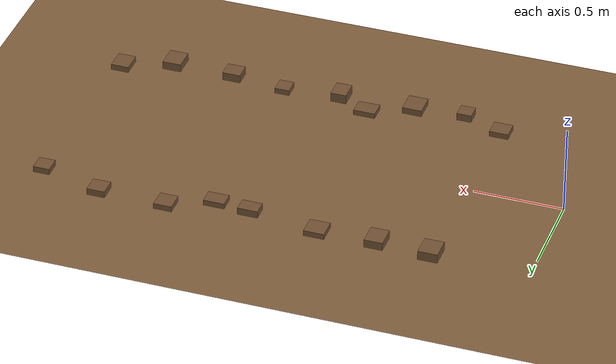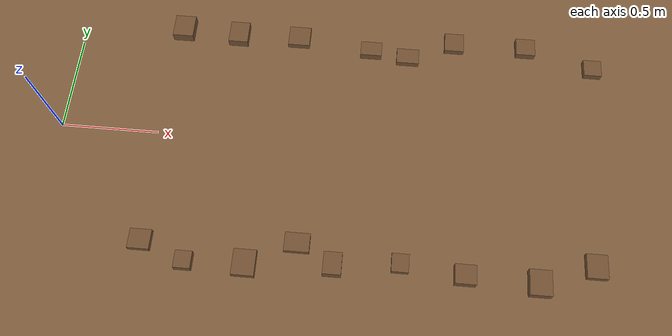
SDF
<sdf version="1.9">
 <world name="robot_shake">
  <physics name="1ms" type="ignored">
   <max_step_size>0.001</max_step_size>
   <real_time_factor>1.0</real_time_factor>
  </physics>
  <plugin filename="ignition-gazebo-physics-system" name="ignition::gazebo::systems::Physics"/>
  <plugin filename="ignition-gazebo-imu-system" name="ignition::gazebo::systems::Imu"/>
  <plugin filename="ignition-gazebo-scene-broadcaster-system" name="ignition::gazebo::systems::SceneBroadcaster"/>
  <plugin filename="ignition-gazebo-user-commands-system" name="ignition::gazebo::systems::UserCommands"/>
  <light type="directional" name="sun">
   <cast_shadows>false</cast_shadows>
   <pose>0 0 10 0 0 0</pose>
   <diffuse>1 1 1 1</diffuse>
   <specular>0.3 0.3 0.3 1</specular>
   <direction>-0.4 0.4 -0.85</direction>
  </light>
  <model name="ground">
   <static>true</static>
   <link name="link">
    <collision name="c">
     <geometry><plane><normal>0 0 1</normal><size>100 100</size></plane></geometry>
     <surface><friction><ode><mu>1.0</mu><mu2>1.0</mu2></ode></friction></surface>
    </collision>
    <visual name="v">
     <geometry><plane><normal>0 0 1</normal><size>100 100</size></plane></geometry>
     <material><ambient>0.3 0.22 0.14 1</ambient><diffuse>0.5 0.37 0.24 1</diffuse></material>
    </visual>
   </link>
  </model>
  <model name="clod_0">
   <static>true</static>
   <pose>0.523 -0.579 0.016 0 0 0</pose>
   <link name="l">
    <collision name="c">
     <geometry><box><size>0.107 0.098 0.032</size></box></geometry>
     <surface><friction><ode><mu>1.0</mu><mu2>1.0</mu2></ode></friction></surface>
    </collision>
    <visual name="v">
     <geometry><box><size>0.107 0.098 0.032</size></box></geometry>
     <material><ambient>0.28 0.2 0.12 1</ambient><diffuse>0.45 0.32 0.2 1</diffuse></material>
    </visual>
   </link>
  </model>
  <model name="clod_1">
   <static>true</static>
   <pose>0.749 -0.665 0.022 0 0 0</pose>
   <link name="l">
    <collision name="c">
     <geometry><box><size>0.083 0.085 0.043</size></box></geometry>
     <surface><friction><ode><mu>1.0</mu><mu2>1.0</mu2></ode></friction></surface>
    </collision>
    <visual name="v">
     <geometry><box><size>0.083 0.085 0.043</size></box></geometry>
     <material><ambient>0.28 0.2 0.12 1</ambient><diffuse>0.45 0.32 0.2 1</diffuse></material>
    </visual>
   </link>
  </model>
  <model name="clod_2">
   <static>true</static>
   <pose>1.038 -0.653 0.018 0 0 0</pose>
   <link name="l">
    <collision name="c">
     <geometry><box><size>0.111 0.127 0.037</size></box></geometry>
     <surface><friction><ode><mu>1.0</mu><mu2>1.0</mu2></ode></friction></surface>
    </collision>
    <visual name="v">
     <geometry><box><size>0.111 0.127 0.037</size></box></geometry>
     <material><ambient>0.28 0.2 0.12 1</ambient><diffuse>0.45 0.32 0.2 1</diffuse></material>
    </visual>
   </link>
  </model>
  <model name="clod_3">
   <static>true</static>
   <pose>1.279 -0.533 0.016 0 0 0</pose>
   <link name="l">
    <collision name="c">
     <geometry><box><size>0.123 0.094 0.031</size></box></geometry>
     <surface><friction><ode><mu>1.0</mu><mu2>1.0</mu2></ode></friction></surface>
    </collision>
    <visual name="v">
     <geometry><box><size>0.123 0.094 0.031</size></box></geometry>
     <material><ambient>0.28 0.2 0.12 1</ambient><diffuse>0.45 0.32 0.2 1</diffuse></material>
    </visual>
   </link>
  </model>
  <model name="clod_4">
   <static>true</static>
   <pose>1.457 -0.627 0.027 0 0 0</pose>
   <link name="l">
    <collision name="c">
     <geometry><box><size>0.089 0.109 0.054</size></box></geometry>
     <surface><friction><ode><mu>1.0</mu><mu2>1.0</mu2></ode></friction></surface>
    </collision>
    <visual name="v">
     <geometry><box><size>0.089 0.109 0.054</size></box></geometry>
     <material><ambient>0.28 0.2 0.12 1</ambient><diffuse>0.45 0.32 0.2 1</diffuse></material>
    </visual>
   </link>
  </model>
  <model name="clod_5">
   <static>true</static>
   <pose>1.777 -0.593 0.016 0 0 0</pose>
   <link name="l">
    <collision name="c">
     <geometry><box><size>0.083 0.090 0.032</size></box></geometry>
     <surface><friction><ode><mu>1.0</mu><mu2>1.0</mu2></ode></friction></surface>
    </collision>
    <visual name="v">
     <geometry><box><size>0.083 0.090 0.032</size></box></geometry>
     <material><ambient>0.28 0.2 0.12 1</ambient><diffuse>0.45 0.32 0.2 1</diffuse></material>
    </visual>
   </link>
  </model>
  <model name="clod_6">
   <static>true</static>
   <pose>2.085 -0.626 0.024 0 0 0</pose>
   <link name="l">
    <collision name="c">
     <geometry><box><size>0.103 0.095 0.048</size></box></geometry>
     <surface><friction><ode><mu>1.0</mu><mu2>1.0</mu2></ode></friction></surface>
    </collision>
    <visual name="v">
     <geometry><box><size>0.103 0.095 0.048</size></box></geometry>
     <material><ambient>0.28 0.2 0.12 1</ambient><diffuse>0.45 0.32 0.2 1</diffuse></material>
    </visual>
   </link>
  </model>
  <model name="clod_7">
   <static>true</static>
   <pose>2.435 -0.636 0.024 0 0 0</pose>
   <link name="l">
    <collision name="c">
     <geometry><box><size>0.106 0.124 0.047</size></box></geometry>
     <surface><friction><ode><mu>1.0</mu><mu2>1.0</mu2></ode></friction></surface>
    </collision>
    <visual name="v">
     <geometry><box><size>0.106 0.124 0.047</size></box></geometry>
     <material><ambient>0.28 0.2 0.12 1</ambient><diffuse>0.45 0.32 0.2 1</diffuse></material>
    </visual>
   </link>
  </model>
  <model name="clod_8">
   <static>true</static>
   <pose>2.706 -0.533 0.017 0 0 0</pose>
   <link name="l">
    <collision name="c">
     <geometry><box><size>0.101 0.118 0.034</size></box></geometry>
     <surface><friction><ode><mu>1.0</mu><mu2>1.0</mu2></ode></friction></surface>
    </collision>
    <visual name="v">
     <geometry><box><size>0.101 0.118 0.034</size></box></geometry>
     <material><ambient>0.28 0.2 0.12 1</ambient><diffuse>0.45 0.32 0.2 1</diffuse></material>
    </visual>
   </link>
  </model>
  <model name="clod_9">
   <static>true</static>
   <pose>0.542 0.624 0.026 0 0 0</pose>
   <link name="l">
    <collision name="c">
     <geometry><box><size>0.109 0.124 0.053</size></box></geometry>
     <surface><friction><ode><mu>1.0</mu><mu2>1.0</mu2></ode></friction></surface>
    </collision>
    <visual name="v">
     <geometry><box><size>0.109 0.124 0.053</size></box></geometry>
     <material><ambient>0.28 0.2 0.12 1</ambient><diffuse>0.45 0.32 0.2 1</diffuse></material>
    </visual>
   </link>
  </model>
  <model name="clod_10">
   <static>true</static>
   <pose>0.844 0.613 0.024 0 0 0</pose>
   <link name="l">
    <collision name="c">
     <geometry><box><size>0.103 0.122 0.047</size></box></geometry>
     <surface><friction><ode><mu>1.0</mu><mu2>1.0</mu2></ode></friction></surface>
    </collision>
    <visual name="v">
     <geometry><box><size>0.103 0.122 0.047</size></box></geometry>
     <material><ambient>0.28 0.2 0.12 1</ambient><diffuse>0.45 0.32 0.2 1</diffuse></material>
    </visual>
   </link>
  </model>
  <model name="clod_11">
   <static>true</static>
   <pose>1.172 0.623 0.016 0 0 0</pose>
   <link name="l">
    <collision name="c">
     <geometry><box><size>0.115 0.112 0.032</size></box></geometry>
     <surface><friction><ode><mu>1.0</mu><mu2>1.0</mu2></ode></friction></surface>
    </collision>
    <visual name="v">
     <geometry><box><size>0.115 0.112 0.032</size></box></geometry>
     <material><ambient>0.28 0.2 0.12 1</ambient><diffuse>0.45 0.32 0.2 1</diffuse></material>
    </visual>
   </link>
  </model>
  <model name="clod_12">
   <static>true</static>
   <pose>1.565 0.570 0.021 0 0 0</pose>
   <link name="l">
    <collision name="c">
     <geometry><box><size>0.113 0.081 0.042</size></box></geometry>
     <surface><friction><ode><mu>1.0</mu><mu2>1.0</mu2></ode></friction></surface>
    </collision>
    <visual name="v">
     <geometry><box><size>0.113 0.081 0.042</size></box></geometry>
     <material><ambient>0.28 0.2 0.12 1</ambient><diffuse>0.45 0.32 0.2 1</diffuse></material>
    </visual>
   </link>
  </model>
  <model name="clod_13">
   <static>true</static>
   <pose>1.763 0.546 0.016 0 0 0</pose>
   <link name="l">
    <collision name="c">
     <geometry><box><size>0.118 0.086 0.032</size></box></geometry>
     <surface><friction><ode><mu>1.0</mu><mu2>1.0</mu2></ode></friction></surface>
    </collision>
    <visual name="v">
     <geometry><box><size>0.118 0.086 0.032</size></box></geometry>
     <material><ambient>0.28 0.2 0.12 1</ambient><diffuse>0.45 0.32 0.2 1</diffuse></material>
    </visual>
   </link>
  </model>
  <model name="clod_14">
   <static>true</static>
   <pose>2.010 0.652 0.016 0 0 0</pose>
   <link name="l">
    <collision name="c">
     <geometry><box><size>0.102 0.107 0.032</size></box></geometry>
     <surface><friction><ode><mu>1.0</mu><mu2>1.0</mu2></ode></friction></surface>
    </collision>
    <visual name="v">
     <geometry><box><size>0.102 0.107 0.032</size></box></geometry>
     <material><ambient>0.28 0.2 0.12 1</ambient><diffuse>0.45 0.32 0.2 1</diffuse></material>
    </visual>
   </link>
  </model>
  <model name="clod_15">
   <static>true</static>
   <pose>2.392 0.651 0.019 0 0 0</pose>
   <link name="l">
    <collision name="c">
     <geometry><box><size>0.101 0.098 0.038</size></box></geometry>
     <surface><friction><ode><mu>1.0</mu><mu2>1.0</mu2></ode></friction></surface>
    </collision>
    <visual name="v">
     <geometry><box><size>0.101 0.098 0.038</size></box></geometry>
     <material><ambient>0.28 0.2 0.12 1</ambient><diffuse>0.45 0.32 0.2 1</diffuse></material>
    </visual>
   </link>
  </model>
  <model name="clod_16">
   <static>true</static>
   <pose>2.745 0.551 0.018 0 0 0</pose>
   <link name="l">
    <collision name="c">
     <geometry><box><size>0.092 0.092 0.035</size></box></geometry>
     <surface><friction><ode><mu>1.0</mu><mu2>1.0</mu2></ode></friction></surface>
    </collision>
    <visual name="v">
     <geometry><box><size>0.092 0.092 0.035</size></box></geometry>
     <material><ambient>0.28 0.2 0.12 1</ambient><diffuse>0.45 0.32 0.2 1</diffuse></material>
    </visual>
   </link>
  </model>
 </world>
</sdf>
